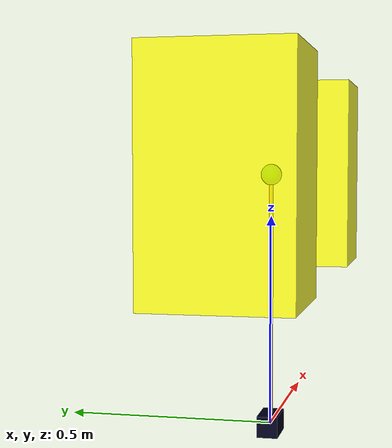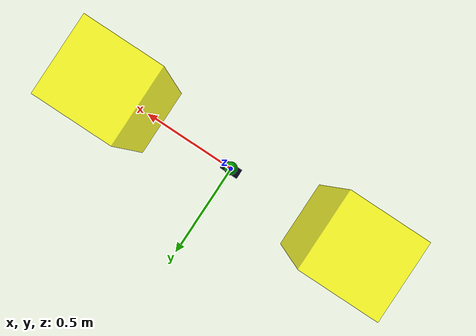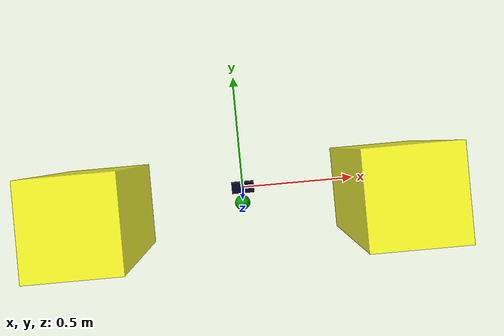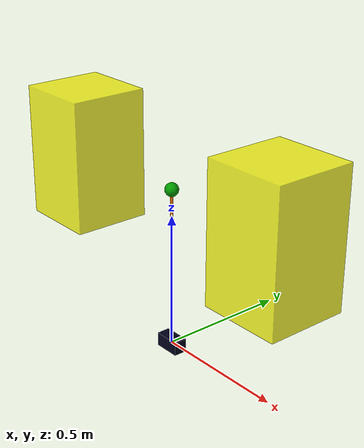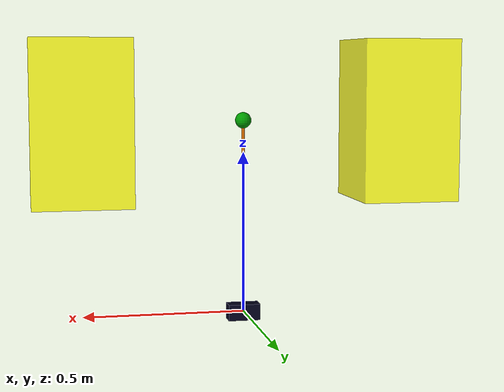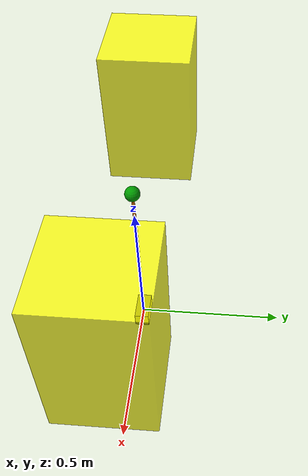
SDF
<?xml version="1.0"?>
<sdf version='1.7'>
  <model name='CartPoleBSA'>
    <!-- This sdf file produces a model based on Barto, Sutton, and Anderson
         in “Neuronlike Adaptive Elements That Can Solve Difficult Learning
         Control Problem”. -->
    <link name='Cart'>
      <pose>0 0 0 0 0 0</pose>
      <inertial>
        <mass>0.978</mass>
        <inertia>
          <ixx>1.0e-20</ixx>
          <iyy>1.0e-20</iyy>
          <izz>1.0e-20</izz>
          <ixy>0</ixy>
          <ixz>0</ixz>
          <iyz>0</iyz>
        </inertia>
      </inertial>

      <visual name='cart_visual'>
        <pose>0 0 0 0 0 0</pose>
        <geometry>
          <box>
            <size>0.1 0.05 0.05</size>
          </box>
        </geometry>
        <material>
          <diffuse>0.0 0.0 0.1 1</diffuse>
        </material>
      </visual>
    </link>

    <link name='Pole'>
      <!-- The pole is modeled as a point mass at the top of a pole. -->
      <!-- The length of the pole is 0.6 meters. -->
      <pose>0 0 0 0 0 0</pose>
      <inertial>
        <pose>0 0 0.4267 0 0 0</pose>
        <mass>0.411</mass>
        <inertia>
          <ixx>1.0e-20</ixx>
          <iyy>1.0e-20</iyy>
          <izz>1.0e-20</izz>
          <ixy>0</ixy>
          <ixz>0</ixz>
          <iyz>0</iyz>
        </inertia>
      </inertial>

      <visual name='pole_point_mass'>
        <pose>0 0 0.6 0 0 0</pose>
        <geometry>
          <sphere>
            <radius>0.025</radius>
          </sphere>
        </geometry>
        <material>
          <diffuse>0.0 0.6 0.0 1</diffuse>
        </material>
      </visual>

      <visual name='pole_rod'>
        <pose>0 0 0.3 0 0 0</pose>
        <geometry>
          <cylinder>
            <radius>0.005</radius>
            <length>0.6</length>
          </cylinder>
        </geometry>
        <material>
          <diffuse>0.8 0.4 0.0 1</diffuse>
        </material>
      </visual>

      <collision name='pole_point_mass'>
        <pose>0 0 0.6 0 0 0</pose>
        <geometry>
          <sphere>
            <radius>0.00001</radius>
          </sphere>
        </geometry>
      </collision>

    </link>

    <!-- Add two soft walls on the both sides of the cartpole. -->
    <link name="left_wall">
      <pose>-0.5 0 0.6 0 0 0</pose>
      <visual name="left_wall">
        <geometry>
          <box>
            <size>0.3 0.3 0.5</size>
          </box>
        </geometry>
        <material>
          <diffuse>1.0 1.0 0.0 0.8</diffuse>
        </material>
      </visual>
      <collision name='left_wall'>
        <geometry>
          <box>
            <size>0.3 0.3 0.5</size>
          </box>
        </geometry>
        <drake:proximity_properties>
          <drake:point_contact_stiffness>100</drake:point_contact_stiffness>
          <drake:hunt_crossley_dissipation>10</drake:hunt_crossley_dissipation>
        </drake:proximity_properties>
      </collision>
    </link>

    <link name="right_wall">
      <pose>0.5 0 0.6 0 0 0</pose>
      <visual name="right_wall">
        <geometry>
          <box>
            <size>0.3 0.3 0.5</size>
          </box>
        </geometry>
        <material>
          <diffuse>1.0 1.0 0.0 0.8</diffuse>
        </material>
      </visual>
      <collision name='right_wall'>
        <geometry>
          <box>
            <size>0.3 0.3 0.5</size>
          </box>
        </geometry>
        <drake:proximity_properties>
          <drake:point_contact_stiffness>100</drake:point_contact_stiffness>
          <drake:hunt_crossley_dissipation>10</drake:hunt_crossley_dissipation>
        </drake:proximity_properties>
      </collision>
    </link>

    <joint name='CartSlider' type='prismatic'>
      <parent>world</parent>
      <child>Cart</child>
      <axis>
        <xyz>1.0 0.0 0.0</xyz>
        <limit>
          <!-- This joint is actuated. -->
          <effort>10.0</effort>
          <lower>-0.75</lower>
          <upper>0.75</upper>
        </limit>
      </axis>
    </joint>

    <joint name='PolePin' type='revolute'>
      <!-- Pose of the joint frame in the pole's frame (located at the COM) -->
      <pose>0 0 0 0 0 0</pose>
      <parent>Cart</parent>
      <child>Pole</child>
      <axis>
        <xyz>0.0 -1.0 0.0</xyz>
        <limit>
          <!-- This joint is not actuated. -->
          <effort>0</effort>
          <lower>-1.2</lower>
          <upper>1.2</upper>
        </limit>
      </axis>
    </joint>

    <joint name='fixed_left_wall' type='fixed'>
      <parent>world</parent>
      <child>left_wall</child>
    </joint>

    <joint name='fixed_right_wall' type='fixed'>
      <parent>world</parent>
      <child>right_wall</child>
    </joint>
  </model>
</sdf>
